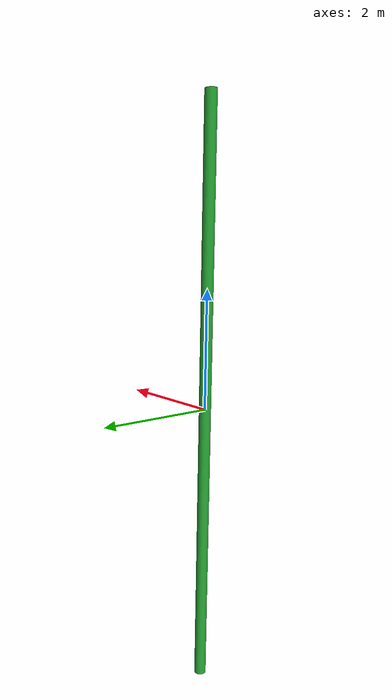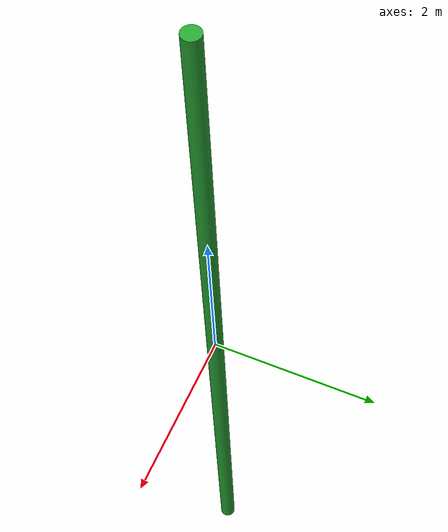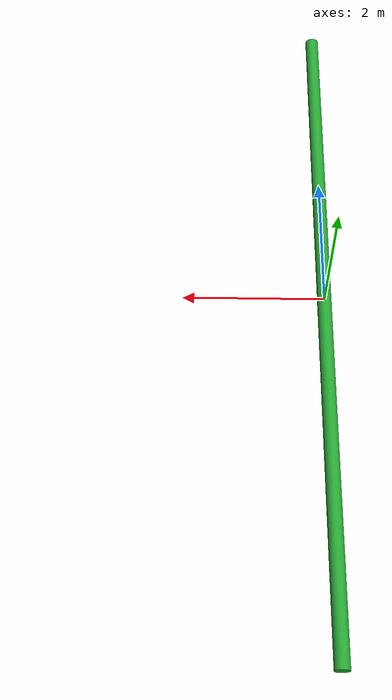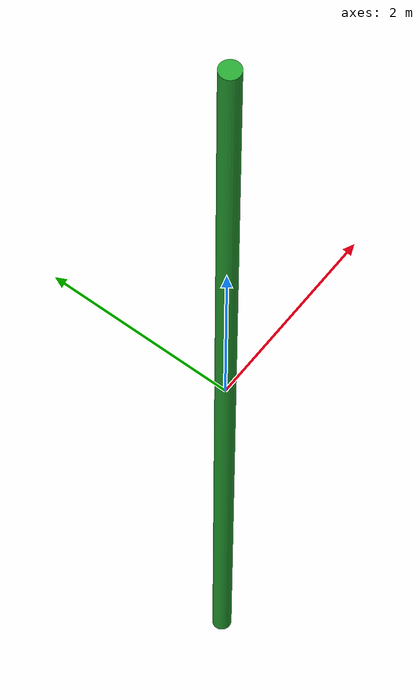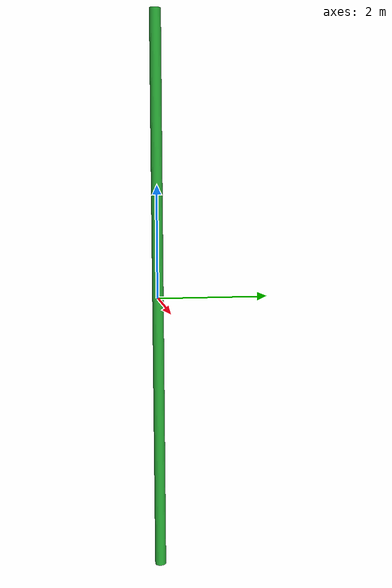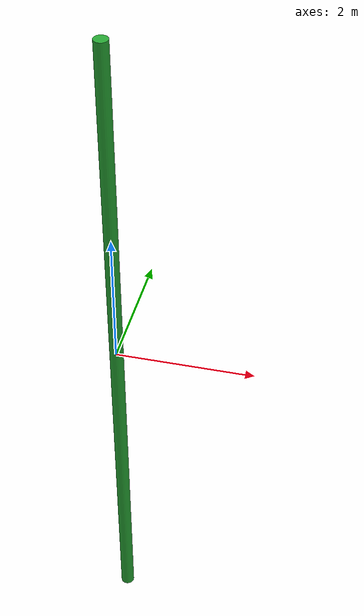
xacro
<robot name="green_pole">
  <link name="pole">
    <inertial>
      <origin xyz="2 0 0" />
      <mass value="1.0" />
      <inertia  ixx="1.0" ixy="0.0"  ixz="0.0"  iyy="100.0"  iyz="0.0"  izz="1.0" />
    </inertial>
    <visual>
      <origin xyz="0 0 0"/>
      <geometry>
        <cylinder radius="0.1" length="10" />
      </geometry>
    </visual>
    <collision>
      <origin xyz="0 0 0"/>
      <geometry>
        <cylinder radius="0.1" length="10" />
      </geometry>
    </collision>
  </link>
  <gazebo reference="pole">
    <material>Gazebo/Green</material>
  </gazebo>
  <gazebo>
    <static>true</static>
  </gazebo>
</robot>
